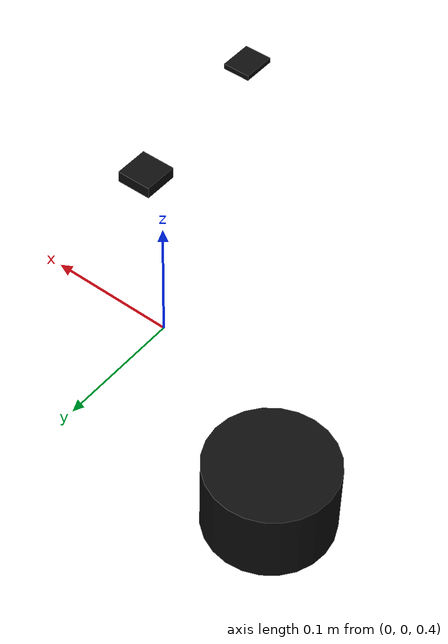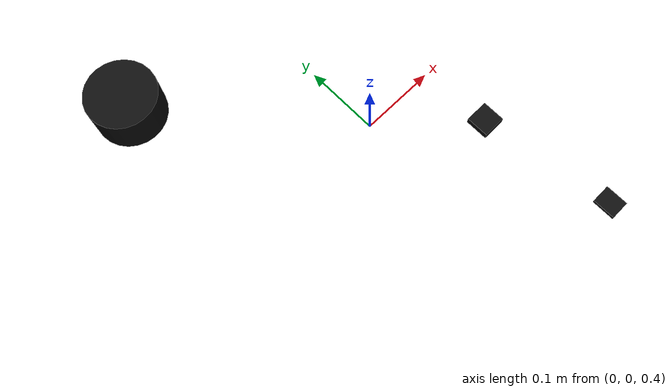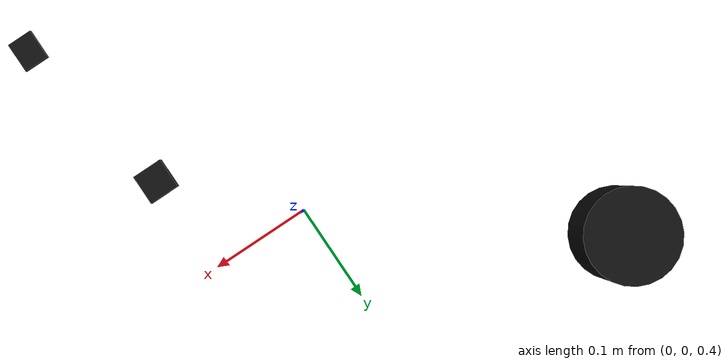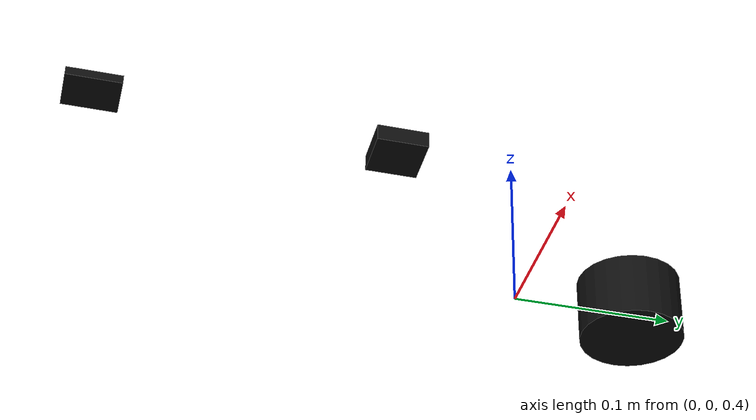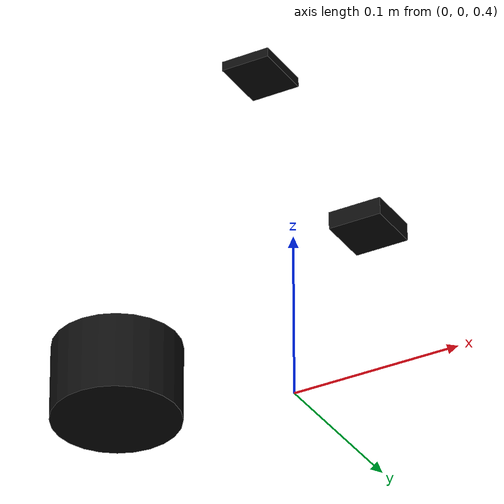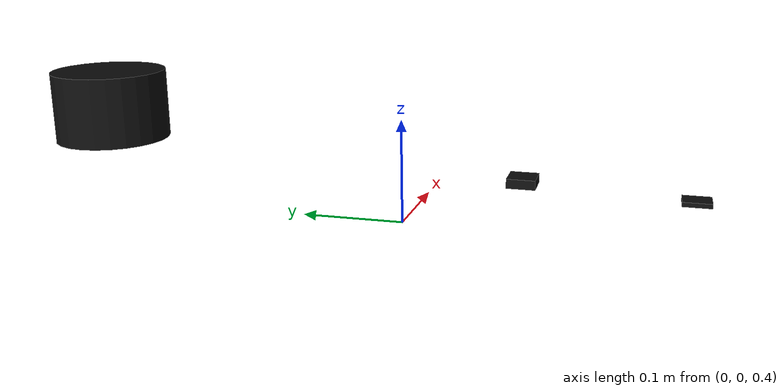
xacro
<?xml version="1.0"?>
<robot name="tracked_robot" xmlns:xacro="http://www.ros.org/wiki/xacro">

  <!-- Материал для визуализации датчиков -->
  <material name="black">
    <color rgba="0.05 0.05 0.05 1.0"/>
  </material>

  <!-- ============ корень TF ============ -->
  <link name="base_link"/>

  <!-- ============ координаты датчиков (ПРАВЬТЕ ЗДЕСЬ) ============ -->
  <xacro:property name="imu_xyz"  value="0.135 -0.275 0.4" />
  <xacro:property name="imu_rpy"  value="0 0 0" />          <!-- ориентация платы IMU -->
  <xacro:property name="gps_xyz"  value="0.10  -0.100 0.42" /> <!-- GPS-антенна -->
  <xacro:property name="laser_xyz" value="-0.21  0.16  0.55" />

  <!-- ============ IMU (BNO085; verify new board mounting and visual dimensions) ============ -->
  <link name="imu_link">
    <visual>
      <geometry><box size="0.0254 0.03048 0.005"/></geometry>
      <material name="black"/>
    </visual>
  </link>
  <joint name="base_to_imu" type="fixed">
    <parent link="base_link"/>
    <child  link="imu_link"/>
    <origin xyz="${imu_xyz}" rpy="${imu_rpy}"/>
  </joint>

  <!-- ============ GPS-антенна (отдельный модуль) ============ -->
  <link name="gps_link">
    <visual>
      <geometry><box size="0.03 0.03 0.01"/></geometry>
      <material name="black"/>
    </visual>
  </link>
  <joint name="base_to_gps" type="fixed">
    <parent link="base_link"/>
    <child  link="gps_link"/>
    <origin xyz="${gps_xyz}" rpy="0 0 0"/>
  </joint>

  <!-- ============ Лидар ============ -->
  <link name="laser_frame">
    <visual>
      <geometry><cylinder radius="0.04" length="0.05"/></geometry>
      <material name="black"/>
    </visual>
  </link>
  <joint name="base_to_laser" type="fixed">
    <parent link="base_link"/>
    <child  link="laser_frame"/>
    <origin xyz="${laser_xyz}" rpy="0 0 0"/>
  </joint>

</robot>
